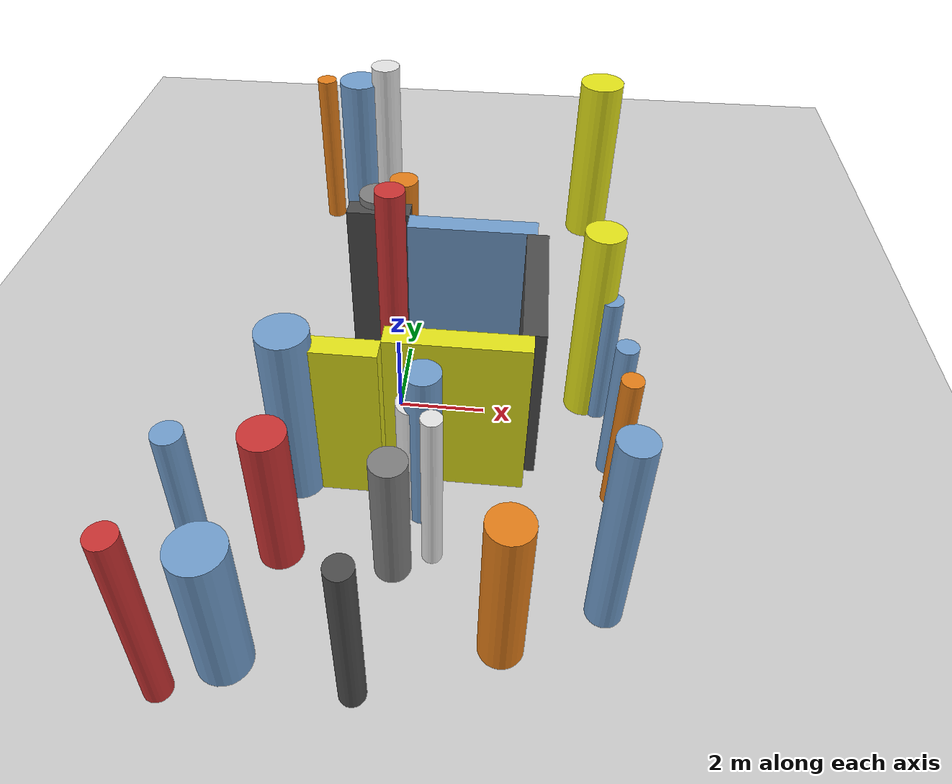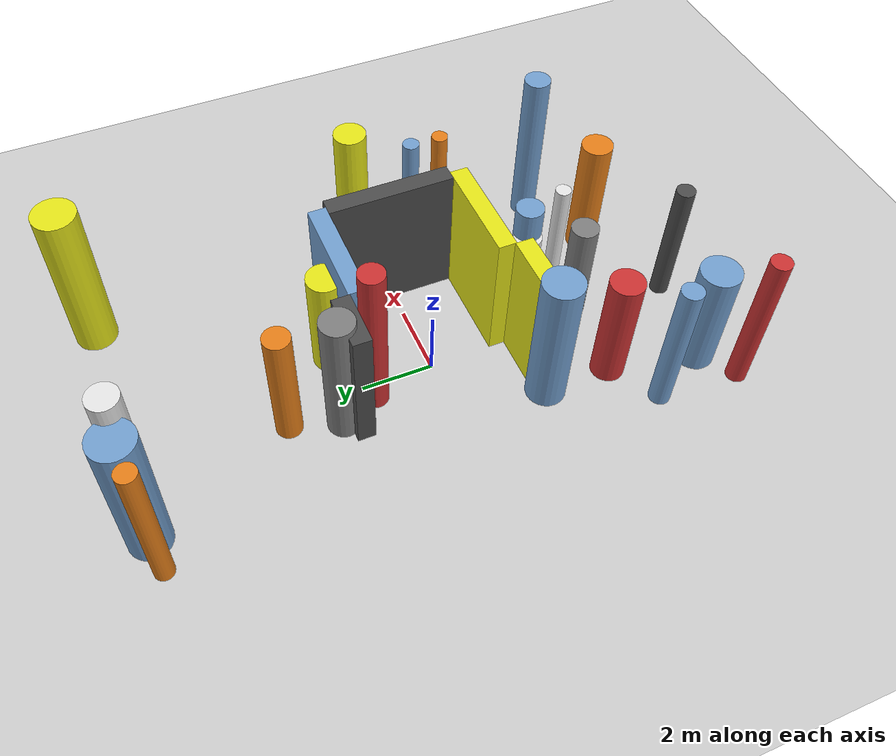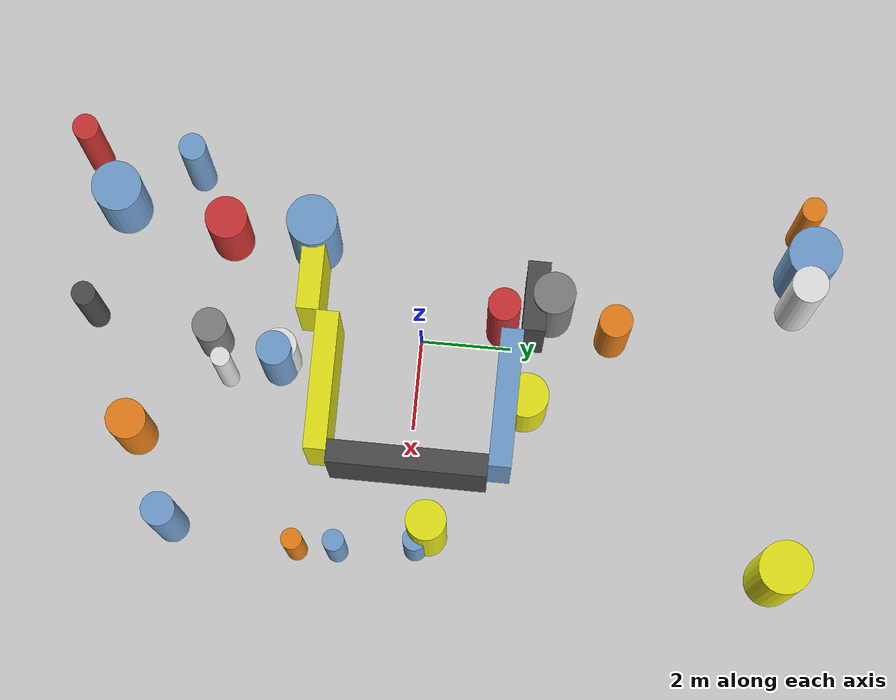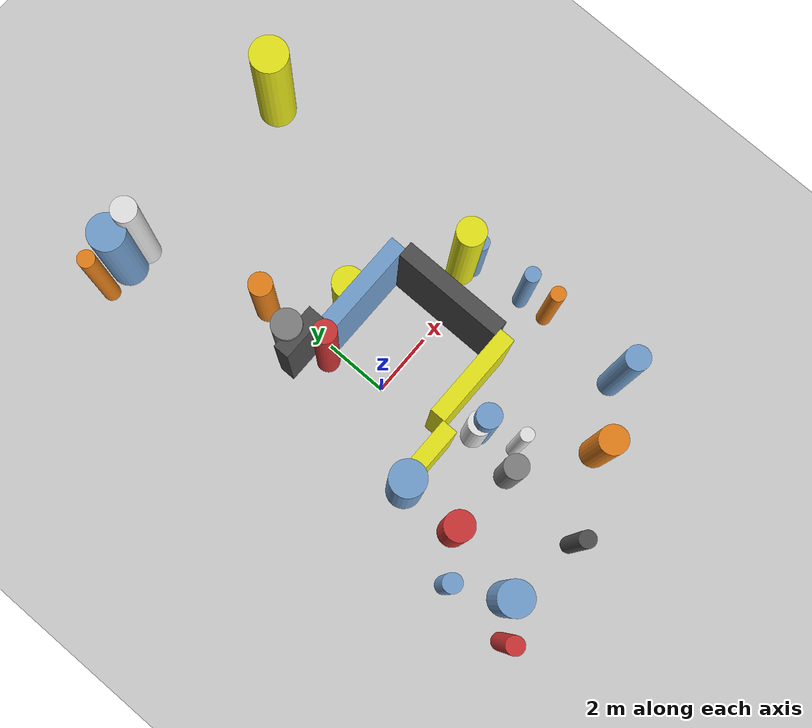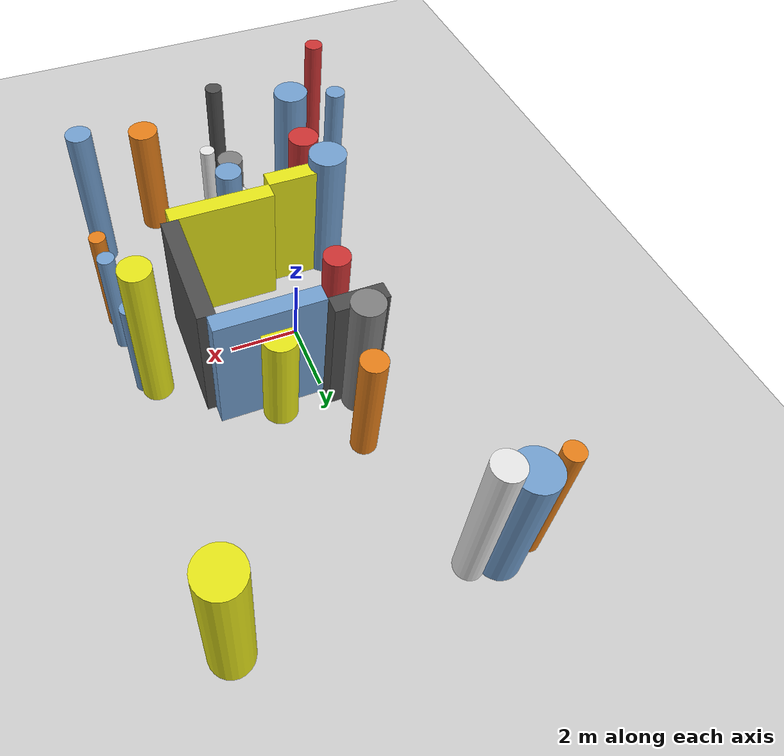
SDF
<?xml version='1.0'?>
<sdf version='1.6'>
  <world name='routeA_rl_v1__dense_recovery__rl_val__cul_de_sac_trap__000106'>
    <!-- Sun light -->
    <light name='sun' type='directional'>
      <cast_shadows>1</cast_shadows>
      <pose>0 0 10 0 0 0</pose>
      <diffuse>0.8 0.8 0.8 1</diffuse>
      <specular>0.2 0.2 0.2 1</specular>
      <attenuation>
        <range>1000</range>
        <constant>0.9</constant>
        <linear>0.01</linear>
        <quadratic>0.001</quadratic>
      </attenuation>
      <direction>-0.5 0.1 -0.9</direction>
    </light>

    <!-- Ground plane -->
    <model name='ground_plane'>
      <static>1</static>
      <link name='link'>
        <collision name='collision'>
          <geometry>
            <plane>
              <normal>0 0 1</normal>
              <size>100 100</size>
            </plane>
          </geometry>
          <surface>
            <contact>
              <collide_bitmask>65535</collide_bitmask>
              <ode/>
            </contact>
            <friction>
              <ode>
                <mu>100</mu>
                <mu2>50</mu2>
              </ode>
              <torsional><ode/></torsional>
            </friction>
            <bounce/>
          </surface>
          <max_contacts>10</max_contacts>
        </collision>
        <visual name='visual'>
          <cast_shadows>0</cast_shadows>
          <geometry>
            <plane>
              <normal>0 0 1</normal>
              <size>100 100</size>
            </plane>
          </geometry>
          <material>
            <script>
              <uri>file://media/materials/scripts/gazebo.material</uri>
              <n>Gazebo/Grey</n>
            </script>
          </material>
        </visual>
      </link>
    </model>

    <!-- Environment -->
    <magnetic_field>6e-06 2.3e-05 -4.2e-05</magnetic_field>
    <atmosphere type='adiabatic'/>
    <physics name='default_physics' default='0' type='ode'>
      <gravity>0 0 -9.8</gravity>
      <max_step_size>0.004</max_step_size>
      <real_time_factor>1</real_time_factor>
      <real_time_update_rate>250</real_time_update_rate>
    </physics>
    <scene>
      <ambient>0.4 0.4 0.4 1</ambient>
      <background>0.7 0.7 0.7 1</background>
      <shadows>1</shadows>
    </scene>
    <wind/>
    <spherical_coordinates>
      <surface_model>EARTH_WGS84</surface_model>
      <latitude_deg>0</latitude_deg>
      <longitude_deg>0</longitude_deg>
      <elevation>0</elevation>
      <heading_deg>0</heading_deg>
    </spherical_coordinates>

    <!-- ============ OBSTACLES (29) ============ -->
    <model name='trap_side_l'>
      <static>1</static>
      <link name='link'>
        <visual name='visual'>
          <geometry>
            <box>
              <size>3.0000 0.5000 4.0000</size>
            </box>
          </geometry>
          <material>
            <script>
              <n>Gazebo/Yellow</n>
              <uri>file://media/materials/scripts/gazebo.material</uri>
            </script>
            <ambient>0.9 0.9 0.1 1</ambient>
          </material>
        </visual>
        <collision name='collision'>
          <geometry>
            <box>
              <size>3.0000 0.5000 4.0000</size>
            </box>
          </geometry>
          <max_contacts>10</max_contacts>
          <surface>
            <contact><ode/></contact>
            <bounce/>
            <friction>
              <ode><mu>1</mu><mu2>1</mu2></ode>
              <torsional><ode/></torsional>
            </friction>
          </surface>
        </collision>
      </link>
      <pose>1.5000 -2.0000 2.0000 0 0 0.0000</pose>
    </model>

    <model name='trap_side_r'>
      <static>1</static>
      <link name='link'>
        <visual name='visual'>
          <geometry>
            <box>
              <size>3.0000 0.5000 4.0000</size>
            </box>
          </geometry>
          <material>
            <script>
              <n>Gazebo/Blue</n>
              <uri>file://media/materials/scripts/gazebo.material</uri>
            </script>
            <ambient>0.447 0.624 0.812 1</ambient>
          </material>
        </visual>
        <collision name='collision'>
          <geometry>
            <box>
              <size>3.0000 0.5000 4.0000</size>
            </box>
          </geometry>
          <max_contacts>10</max_contacts>
          <surface>
            <contact><ode/></contact>
            <bounce/>
            <friction>
              <ode><mu>1</mu><mu2>1</mu2></ode>
              <torsional><ode/></torsional>
            </friction>
          </surface>
        </collision>
      </link>
      <pose>1.5000 2.0000 2.0000 0 0 0.0000</pose>
    </model>

    <model name='trap_back'>
      <static>1</static>
      <link name='link'>
        <visual name='visual'>
          <geometry>
            <box>
              <size>0.5000 3.5000 4.0000</size>
            </box>
          </geometry>
          <material>
            <script>
              <n>Gazebo/DarkGrey</n>
              <uri>file://media/materials/scripts/gazebo.material</uri>
            </script>
            <ambient>0.3 0.3 0.3 1</ambient>
          </material>
        </visual>
        <collision name='collision'>
          <geometry>
            <box>
              <size>0.5000 3.5000 4.0000</size>
            </box>
          </geometry>
          <max_contacts>10</max_contacts>
          <surface>
            <contact><ode/></contact>
            <bounce/>
            <friction>
              <ode><mu>1</mu><mu2>1</mu2></ode>
              <torsional><ode/></torsional>
            </friction>
          </surface>
        </collision>
      </link>
      <pose>3.0000 0.0000 2.0000 0 0 0.0000</pose>
    </model>

    <model name='trap_funnel_l'>
      <static>1</static>
      <link name='link'>
        <visual name='visual'>
          <geometry>
            <box>
              <size>1.5000 0.5000 4.0000</size>
            </box>
          </geometry>
          <material>
            <script>
              <n>Gazebo/Yellow</n>
              <uri>file://media/materials/scripts/gazebo.material</uri>
            </script>
            <ambient>0.9 0.9 0.1 1</ambient>
          </material>
        </visual>
        <collision name='collision'>
          <geometry>
            <box>
              <size>1.5000 0.5000 4.0000</size>
            </box>
          </geometry>
          <max_contacts>10</max_contacts>
          <surface>
            <contact><ode/></contact>
            <bounce/>
            <friction>
              <ode><mu>1</mu><mu2>1</mu2></ode>
              <torsional><ode/></torsional>
            </friction>
          </surface>
        </collision>
      </link>
      <pose>-0.7500 -2.4500 2.0000 0 0 0.0000</pose>
    </model>

    <model name='trap_funnel_r'>
      <static>1</static>
      <link name='link'>
        <visual name='visual'>
          <geometry>
            <box>
              <size>1.5000 0.5000 4.0000</size>
            </box>
          </geometry>
          <material>
            <script>
              <n>Gazebo/DarkGrey</n>
              <uri>file://media/materials/scripts/gazebo.material</uri>
            </script>
            <ambient>0.3 0.3 0.3 1</ambient>
          </material>
        </visual>
        <collision name='collision'>
          <geometry>
            <box>
              <size>1.5000 0.5000 4.0000</size>
            </box>
          </geometry>
          <max_contacts>10</max_contacts>
          <surface>
            <contact><ode/></contact>
            <bounce/>
            <friction>
              <ode><mu>1</mu><mu2>1</mu2></ode>
              <torsional><ode/></torsional>
            </friction>
          </surface>
        </collision>
      </link>
      <pose>-0.7500 2.4500 2.0000 0 0 0.0000</pose>
    </model>

    <model name='trap_scatter_0'>
      <static>1</static>
      <link name='link'>
        <visual name='visual'>
          <geometry>
            <cylinder>
              <radius>0.4636</radius>
              <length>3.5366</length>
            </cylinder>
          </geometry>
          <material>
            <script>
              <n>Gazebo/Red</n>
              <uri>file://media/materials/scripts/gazebo.material</uri>
            </script>
            <ambient>0.8 0.2 0.2 1</ambient>
          </material>
        </visual>
        <collision name='collision'>
          <geometry>
            <cylinder>
              <radius>0.4636</radius>
              <length>3.5366</length>
            </cylinder>
          </geometry>
          <max_contacts>10</max_contacts>
          <surface>
            <contact><ode/></contact>
            <bounce/>
            <friction>
              <ode><mu>1</mu><mu2>1</mu2></ode>
              <torsional><ode/></torsional>
            </friction>
          </surface>
        </collision>
      </link>
      <pose>-1.8703 -4.4226 1.7683 0 0 0.0000</pose>
    </model>

    <model name='trap_scatter_1'>
      <static>1</static>
      <link name='link'>
        <visual name='visual'>
          <geometry>
            <cylinder>
              <radius>0.2122</radius>
              <length>4.0328</length>
            </cylinder>
          </geometry>
          <material>
            <script>
              <n>Gazebo/White</n>
              <uri>file://media/materials/scripts/gazebo.material</uri>
            </script>
            <ambient>0.9 0.9 0.9 1</ambient>
          </material>
        </visual>
        <collision name='collision'>
          <geometry>
            <cylinder>
              <radius>0.2122</radius>
              <length>4.0328</length>
            </cylinder>
          </geometry>
          <max_contacts>10</max_contacts>
          <surface>
            <contact><ode/></contact>
            <bounce/>
            <friction>
              <ode><mu>1</mu><mu2>1</mu2></ode>
              <torsional><ode/></torsional>
            </friction>
          </surface>
        </collision>
      </link>
      <pose>1.2150 -4.2034 2.0164 0 0 0.0000</pose>
    </model>

    <model name='trap_scatter_2'>
      <static>1</static>
      <link name='link'>
        <visual name='visual'>
          <geometry>
            <cylinder>
              <radius>0.2626</radius>
              <length>3.8557</length>
            </cylinder>
          </geometry>
          <material>
            <script>
              <n>Gazebo/DarkGrey</n>
              <uri>file://media/materials/scripts/gazebo.material</uri>
            </script>
            <ambient>0.3 0.3 0.3 1</ambient>
          </material>
        </visual>
        <collision name='collision'>
          <geometry>
            <cylinder>
              <radius>0.2626</radius>
              <length>3.8557</length>
            </cylinder>
          </geometry>
          <max_contacts>10</max_contacts>
          <surface>
            <contact><ode/></contact>
            <bounce/>
            <friction>
              <ode><mu>1</mu><mu2>1</mu2></ode>
              <torsional><ode/></torsional>
            </friction>
          </surface>
        </collision>
      </link>
      <pose>0.1156 -7.2906 1.9278 0 0 0.0000</pose>
    </model>

    <model name='trap_scatter_4'>
      <static>1</static>
      <link name='link'>
        <visual name='visual'>
          <geometry>
            <cylinder>
              <radius>0.4893</radius>
              <length>3.3027</length>
            </cylinder>
          </geometry>
          <material>
            <script>
              <n>Gazebo/Yellow</n>
              <uri>file://media/materials/scripts/gazebo.material</uri>
            </script>
            <ambient>0.9 0.9 0.1 1</ambient>
          </material>
        </visual>
        <collision name='collision'>
          <geometry>
            <cylinder>
              <radius>0.4893</radius>
              <length>3.3027</length>
            </cylinder>
          </geometry>
          <max_contacts>10</max_contacts>
          <surface>
            <contact><ode/></contact>
            <bounce/>
            <friction>
              <ode><mu>1</mu><mu2>1</mu2></ode>
              <torsional><ode/></torsional>
            </friction>
          </surface>
        </collision>
      </link>
      <pose>1.3336 2.4345 1.6514 0 0 0.0000</pose>
    </model>

    <model name='trap_scatter_5'>
      <static>1</static>
      <link name='link'>
        <visual name='visual'>
          <geometry>
            <cylinder>
              <radius>0.2942</radius>
              <length>4.2757</length>
            </cylinder>
          </geometry>
          <material>
            <script>
              <n>Gazebo/Blue</n>
              <uri>file://media/materials/scripts/gazebo.material</uri>
            </script>
            <ambient>0.447 0.624 0.812 1</ambient>
          </material>
        </visual>
        <collision name='collision'>
          <geometry>
            <cylinder>
              <radius>0.2942</radius>
              <length>4.2757</length>
            </cylinder>
          </geometry>
          <max_contacts>10</max_contacts>
          <surface>
            <contact><ode/></contact>
            <bounce/>
            <friction>
              <ode><mu>1</mu><mu2>1</mu2></ode>
              <torsional><ode/></torsional>
            </friction>
          </surface>
        </collision>
      </link>
      <pose>-3.2224 -5.2490 2.1379 0 0 0.0000</pose>
    </model>

    <model name='trap_scatter_6'>
      <static>1</static>
      <link name='link'>
        <visual name='visual'>
          <geometry>
            <cylinder>
              <radius>0.3956</radius>
              <length>4.9399</length>
            </cylinder>
          </geometry>
          <material>
            <script>
              <n>Gazebo/White</n>
              <uri>file://media/materials/scripts/gazebo.material</uri>
            </script>
            <ambient>0.9 0.9 0.9 1</ambient>
          </material>
        </visual>
        <collision name='collision'>
          <geometry>
            <cylinder>
              <radius>0.3956</radius>
              <length>4.9399</length>
            </cylinder>
          </geometry>
          <max_contacts>10</max_contacts>
          <surface>
            <contact><ode/></contact>
            <bounce/>
            <friction>
              <ode><mu>1</mu><mu2>1</mu2></ode>
              <torsional><ode/></torsional>
            </friction>
          </surface>
        </collision>
      </link>
      <pose>-1.4331 8.2228 2.4700 0 0 0.0000</pose>
    </model>

    <model name='trap_scatter_7'>
      <static>1</static>
      <link name='link'>
        <visual name='visual'>
          <geometry>
            <cylinder>
              <radius>0.4394</radius>
              <length>4.9982</length>
            </cylinder>
          </geometry>
          <material>
            <script>
              <n>Gazebo/Yellow</n>
              <uri>file://media/materials/scripts/gazebo.material</uri>
            </script>
            <ambient>0.9 0.9 0.1 1</ambient>
          </material>
        </visual>
        <collision name='collision'>
          <geometry>
            <cylinder>
              <radius>0.4394</radius>
              <length>4.9982</length>
            </cylinder>
          </geometry>
          <max_contacts>10</max_contacts>
          <surface>
            <contact><ode/></contact>
            <bounce/>
            <friction>
              <ode><mu>1</mu><mu2>1</mu2></ode>
              <torsional><ode/></torsional>
            </friction>
          </surface>
        </collision>
      </link>
      <pose>4.3640 0.5493 2.4991 0 0 0.0000</pose>
    </model>

    <model name='trap_scatter_8'>
      <static>1</static>
      <link name='link'>
        <visual name='visual'>
          <geometry>
            <cylinder>
              <radius>0.5489</radius>
              <length>3.3941</length>
            </cylinder>
          </geometry>
          <material>
            <script>
              <n>Gazebo/Blue</n>
              <uri>file://media/materials/scripts/gazebo.material</uri>
            </script>
            <ambient>0.447 0.624 0.812 1</ambient>
          </material>
        </visual>
        <collision name='collision'>
          <geometry>
            <cylinder>
              <radius>0.5489</radius>
              <length>3.3941</length>
            </cylinder>
          </geometry>
          <max_contacts>10</max_contacts>
          <surface>
            <contact><ode/></contact>
            <bounce/>
            <friction>
              <ode><mu>1</mu><mu2>1</mu2></ode>
              <torsional><ode/></torsional>
            </friction>
          </surface>
        </collision>
      </link>
      <pose>-2.3525 -6.8742 1.6970 0 0 0.0000</pose>
    </model>

    <model name='trap_scatter_9'>
      <static>1</static>
      <link name='link'>
        <visual name='visual'>
          <geometry>
            <cylinder>
              <radius>0.5833</radius>
              <length>4.7379</length>
            </cylinder>
          </geometry>
          <material>
            <script>
              <n>Gazebo/Yellow</n>
              <uri>file://media/materials/scripts/gazebo.material</uri>
            </script>
            <ambient>0.9 0.9 0.1 1</ambient>
          </material>
        </visual>
        <collision name='collision'>
          <geometry>
            <cylinder>
              <radius>0.5833</radius>
              <length>4.7379</length>
            </cylinder>
          </geometry>
          <max_contacts>10</max_contacts>
          <surface>
            <contact><ode/></contact>
            <bounce/>
            <friction>
              <ode><mu>1</mu><mu2>1</mu2></ode>
              <torsional><ode/></torsional>
            </friction>
          </surface>
        </collision>
      </link>
      <pose>4.6090 8.2356 2.3690 0 0 0.0000</pose>
    </model>

    <model name='trap_scatter_10'>
      <static>1</static>
      <link name='link'>
        <visual name='visual'>
          <geometry>
            <cylinder>
              <radius>0.5506</radius>
              <length>4.3475</length>
            </cylinder>
          </geometry>
          <material>
            <script>
              <n>Gazebo/Blue</n>
              <uri>file://media/materials/scripts/gazebo.material</uri>
            </script>
            <ambient>0.447 0.624 0.812 1</ambient>
          </material>
        </visual>
        <collision name='collision'>
          <geometry>
            <cylinder>
              <radius>0.5506</radius>
              <length>4.3475</length>
            </cylinder>
          </geometry>
          <max_contacts>10</max_contacts>
          <surface>
            <contact><ode/></contact>
            <bounce/>
            <friction>
              <ode><mu>1</mu><mu2>1</mu2></ode>
              <torsional><ode/></torsional>
            </friction>
          </surface>
        </collision>
      </link>
      <pose>-1.8771 -2.5231 2.1737 0 0 0.0000</pose>
    </model>

    <model name='trap_scatter_11'>
      <static>1</static>
      <link name='link'>
        <visual name='visual'>
          <geometry>
            <cylinder>
              <radius>0.2392</radius>
              <length>3.5911</length>
            </cylinder>
          </geometry>
          <material>
            <script>
              <n>Gazebo/Blue</n>
              <uri>file://media/materials/scripts/gazebo.material</uri>
            </script>
            <ambient>0.447 0.624 0.812 1</ambient>
          </material>
        </visual>
        <collision name='collision'>
          <geometry>
            <cylinder>
              <radius>0.2392</radius>
              <length>3.5911</length>
            </cylinder>
          </geometry>
          <max_contacts>10</max_contacts>
          <surface>
            <contact><ode/></contact>
            <bounce/>
            <friction>
              <ode><mu>1</mu><mu2>1</mu2></ode>
              <torsional><ode/></torsional>
            </friction>
          </surface>
        </collision>
      </link>
      <pose>4.8815 -1.4135 1.7956 0 0 0.0000</pose>
    </model>

    <model name='trap_scatter_12'>
      <static>1</static>
      <link name='link'>
        <visual name='visual'>
          <geometry>
            <cylinder>
              <radius>0.2330</radius>
              <length>3.5318</length>
            </cylinder>
          </geometry>
          <material>
            <script>
              <n>Gazebo/Orange</n>
              <uri>file://media/materials/scripts/gazebo.material</uri>
            </script>
            <ambient>0.9 0.5 0.1 1</ambient>
          </material>
        </visual>
        <collision name='collision'>
          <geometry>
            <cylinder>
              <radius>0.2330</radius>
              <length>3.5318</length>
            </cylinder>
          </geometry>
          <max_contacts>10</max_contacts>
          <surface>
            <contact><ode/></contact>
            <bounce/>
            <friction>
              <ode><mu>1</mu><mu2>1</mu2></ode>
              <torsional><ode/></torsional>
            </friction>
          </surface>
        </collision>
      </link>
      <pose>4.9346 -2.3147 1.7659 0 0 0.0000</pose>
    </model>

    <model name='trap_scatter_13'>
      <static>1</static>
      <link name='link'>
        <visual name='visual'>
          <geometry>
            <cylinder>
              <radius>0.3798</radius>
              <length>3.2017</length>
            </cylinder>
          </geometry>
          <material>
            <script>
              <n>Gazebo/Grey</n>
              <uri>file://media/materials/scripts/gazebo.material</uri>
            </script>
            <ambient>0.5 0.5 0.5 1</ambient>
          </material>
        </visual>
        <collision name='collision'>
          <geometry>
            <cylinder>
              <radius>0.3798</radius>
              <length>3.2017</length>
            </cylinder>
          </geometry>
          <max_contacts>10</max_contacts>
          <surface>
            <contact><ode/></contact>
            <bounce/>
            <friction>
              <ode><mu>1</mu><mu2>1</mu2></ode>
              <torsional><ode/></torsional>
            </friction>
          </surface>
        </collision>
      </link>
      <pose>0.4575 -4.5658 1.6008 0 0 0.0000</pose>
    </model>

    <model name='trap_scatter_14'>
      <static>1</static>
      <link name='link'>
        <visual name='visual'>
          <geometry>
            <cylinder>
              <radius>0.4614</radius>
              <length>4.1831</length>
            </cylinder>
          </geometry>
          <material>
            <script>
              <n>Gazebo/Grey</n>
              <uri>file://media/materials/scripts/gazebo.material</uri>
            </script>
            <ambient>0.5 0.5 0.5 1</ambient>
          </material>
        </visual>
        <collision name='collision'>
          <geometry>
            <cylinder>
              <radius>0.4614</radius>
              <length>4.1831</length>
            </cylinder>
          </geometry>
          <max_contacts>10</max_contacts>
          <surface>
            <contact><ode/></contact>
            <bounce/>
            <friction>
              <ode><mu>1</mu><mu2>1</mu2></ode>
              <torsional><ode/></torsional>
            </friction>
          </surface>
        </collision>
      </link>
      <pose>-0.8217 2.8249 2.0915 0 0 0.0000</pose>
    </model>

    <model name='trap_scatter_15'>
      <static>1</static>
      <link name='link'>
        <visual name='visual'>
          <geometry>
            <cylinder>
              <radius>0.3694</radius>
              <length>4.8648</length>
            </cylinder>
          </geometry>
          <material>
            <script>
              <n>Gazebo/Blue</n>
              <uri>file://media/materials/scripts/gazebo.material</uri>
            </script>
            <ambient>0.447 0.624 0.812 1</ambient>
          </material>
        </visual>
        <collision name='collision'>
          <geometry>
            <cylinder>
              <radius>0.3694</radius>
              <length>4.8648</length>
            </cylinder>
          </geometry>
          <max_contacts>10</max_contacts>
          <surface>
            <contact><ode/></contact>
            <bounce/>
            <friction>
              <ode><mu>1</mu><mu2>1</mu2></ode>
              <torsional><ode/></torsional>
            </friction>
          </surface>
        </collision>
      </link>
      <pose>4.6612 -5.1332 2.4324 0 0 0.0000</pose>
    </model>

    <model name='trap_scatter_16'>
      <static>1</static>
      <link name='link'>
        <visual name='visual'>
          <geometry>
            <cylinder>
              <radius>0.2817</radius>
              <length>4.4987</length>
            </cylinder>
          </geometry>
          <material>
            <script>
              <n>Gazebo/Red</n>
              <uri>file://media/materials/scripts/gazebo.material</uri>
            </script>
            <ambient>0.8 0.2 0.2 1</ambient>
          </material>
        </visual>
        <collision name='collision'>
          <geometry>
            <cylinder>
              <radius>0.2817</radius>
              <length>4.4987</length>
            </cylinder>
          </geometry>
          <max_contacts>10</max_contacts>
          <surface>
            <contact><ode/></contact>
            <bounce/>
            <friction>
              <ode><mu>1</mu><mu2>1</mu2></ode>
              <torsional><ode/></torsional>
            </friction>
          </surface>
        </collision>
      </link>
      <pose>-3.3941 -7.5605 2.2494 0 0 0.0000</pose>
    </model>

    <model name='trap_scatter_17'>
      <static>1</static>
      <link name='link'>
        <visual name='visual'>
          <geometry>
            <cylinder>
              <radius>0.3636</radius>
              <length>3.7543</length>
            </cylinder>
          </geometry>
          <material>
            <script>
              <n>Gazebo/Orange</n>
              <uri>file://media/materials/scripts/gazebo.material</uri>
            </script>
            <ambient>0.9 0.5 0.1 1</ambient>
          </material>
        </visual>
        <collision name='collision'>
          <geometry>
            <cylinder>
              <radius>0.3636</radius>
              <length>3.7543</length>
            </cylinder>
          </geometry>
          <max_contacts>10</max_contacts>
          <surface>
            <contact><ode/></contact>
            <bounce/>
            <friction>
              <ode><mu>1</mu><mu2>1</mu2></ode>
              <torsional><ode/></torsional>
            </friction>
          </surface>
        </collision>
      </link>
      <pose>-0.4025 4.2047 1.8772 0 0 0.0000</pose>
    </model>

    <model name='trap_scatter_18'>
      <static>1</static>
      <link name='link'>
        <visual name='visual'>
          <geometry>
            <cylinder>
              <radius>0.5742</radius>
              <length>4.4331</length>
            </cylinder>
          </geometry>
          <material>
            <script>
              <n>Gazebo/Blue</n>
              <uri>file://media/materials/scripts/gazebo.material</uri>
            </script>
            <ambient>0.447 0.624 0.812 1</ambient>
          </material>
        </visual>
        <collision name='collision'>
          <geometry>
            <cylinder>
              <radius>0.5742</radius>
              <length>4.4331</length>
            </cylinder>
          </geometry>
          <max_contacts>10</max_contacts>
          <surface>
            <contact><ode/></contact>
            <bounce/>
            <friction>
              <ode><mu>1</mu><mu2>1</mu2></ode>
              <torsional><ode/></torsional>
            </friction>
          </surface>
        </collision>
      </link>
      <pose>-2.1882 8.3069 2.2165 0 0 0.0000</pose>
    </model>

    <model name='trap_scatter_19'>
      <static>1</static>
      <link name='link'>
        <visual name='visual'>
          <geometry>
            <cylinder>
              <radius>0.2525</radius>
              <length>3.4010</length>
            </cylinder>
          </geometry>
          <material>
            <script>
              <n>Gazebo/Blue</n>
              <uri>file://media/materials/scripts/gazebo.material</uri>
            </script>
            <ambient>0.447 0.624 0.812 1</ambient>
          </material>
        </visual>
        <collision name='collision'>
          <geometry>
            <cylinder>
              <radius>0.2525</radius>
              <length>3.4010</length>
            </cylinder>
          </geometry>
          <max_contacts>10</max_contacts>
          <surface>
            <contact><ode/></contact>
            <bounce/>
            <friction>
              <ode><mu>1</mu><mu2>1</mu2></ode>
              <torsional><ode/></torsional>
            </friction>
          </surface>
        </collision>
      </link>
      <pose>4.6819 0.3083 1.7005 0 0 0.0000</pose>
    </model>

    <model name='trap_scatter_20'>
      <static>1</static>
      <link name='link'>
        <visual name='visual'>
          <geometry>
            <cylinder>
              <radius>0.3548</radius>
              <length>4.9505</length>
            </cylinder>
          </geometry>
          <material>
            <script>
              <n>Gazebo/Red</n>
              <uri>file://media/materials/scripts/gazebo.material</uri>
            </script>
            <ambient>0.8 0.2 0.2 1</ambient>
          </material>
        </visual>
        <collision name='collision'>
          <geometry>
            <cylinder>
              <radius>0.3548</radius>
              <length>4.9505</length>
            </cylinder>
          </geometry>
          <max_contacts>10</max_contacts>
          <surface>
            <contact><ode/></contact>
            <bounce/>
            <friction>
              <ode><mu>1</mu><mu2>1</mu2></ode>
              <torsional><ode/></torsional>
            </friction>
          </surface>
        </collision>
      </link>
      <pose>-0.3796 1.7744 2.4753 0 0 0.0000</pose>
    </model>

    <model name='trap_scatter_21'>
      <static>1</static>
      <link name='link'>
        <visual name='visual'>
          <geometry>
            <cylinder>
              <radius>0.2666</radius>
              <length>4.4649</length>
            </cylinder>
          </geometry>
          <material>
            <script>
              <n>Gazebo/Orange</n>
              <uri>file://media/materials/scripts/gazebo.material</uri>
            </script>
            <ambient>0.9 0.5 0.1 1</ambient>
          </material>
        </visual>
        <collision name='collision'>
          <geometry>
            <cylinder>
              <radius>0.2666</radius>
              <length>4.4649</length>
            </cylinder>
          </geometry>
          <max_contacts>10</max_contacts>
          <surface>
            <contact><ode/></contact>
            <bounce/>
            <friction>
              <ode><mu>1</mu><mu2>1</mu2></ode>
              <torsional><ode/></torsional>
            </friction>
          </surface>
        </collision>
      </link>
      <pose>-3.1162 8.1965 2.2324 0 0 0.0000</pose>
    </model>

    <model name='trap_scatter_22'>
      <static>1</static>
      <link name='link'>
        <visual name='visual'>
          <geometry>
            <cylinder>
              <radius>0.3762</radius>
              <length>4.0650</length>
            </cylinder>
          </geometry>
          <material>
            <script>
              <n>Gazebo/Blue</n>
              <uri>file://media/materials/scripts/gazebo.material</uri>
            </script>
            <ambient>0.447 0.624 0.812 1</ambient>
          </material>
        </visual>
        <collision name='collision'>
          <geometry>
            <cylinder>
              <radius>0.3762</radius>
              <length>4.0650</length>
            </cylinder>
          </geometry>
          <max_contacts>10</max_contacts>
          <surface>
            <contact><ode/></contact>
            <bounce/>
            <friction>
              <ode><mu>1</mu><mu2>1</mu2></ode>
              <torsional><ode/></torsional>
            </friction>
          </surface>
        </collision>
      </link>
      <pose>0.9227 -3.0832 2.0325 0 0 0.0000</pose>
    </model>

    <model name='trap_scatter_23'>
      <static>1</static>
      <link name='link'>
        <visual name='visual'>
          <geometry>
            <cylinder>
              <radius>0.3794</radius>
              <length>3.1960</length>
            </cylinder>
          </geometry>
          <material>
            <script>
              <n>Gazebo/White</n>
              <uri>file://media/materials/scripts/gazebo.material</uri>
            </script>
            <ambient>0.9 0.9 0.9 1</ambient>
          </material>
        </visual>
        <collision name='collision'>
          <geometry>
            <cylinder>
              <radius>0.3794</radius>
              <length>3.1960</length>
            </cylinder>
          </geometry>
          <max_contacts>10</max_contacts>
          <surface>
            <contact><ode/></contact>
            <bounce/>
            <friction>
              <ode><mu>1</mu><mu2>1</mu2></ode>
              <torsional><ode/></torsional>
            </friction>
          </surface>
        </collision>
      </link>
      <pose>0.7463 -3.0093 1.5980 0 0 0.0000</pose>
    </model>

    <model name='trap_scatter_24'>
      <static>1</static>
      <link name='link'>
        <visual name='visual'>
          <geometry>
            <cylinder>
              <radius>0.4427</radius>
              <length>3.7424</length>
            </cylinder>
          </geometry>
          <material>
            <script>
              <n>Gazebo/Orange</n>
              <uri>file://media/materials/scripts/gazebo.material</uri>
            </script>
            <ambient>0.9 0.5 0.1 1</ambient>
          </material>
        </visual>
        <collision name='collision'>
          <geometry>
            <cylinder>
              <radius>0.4427</radius>
              <length>3.7424</length>
            </cylinder>
          </geometry>
          <max_contacts>10</max_contacts>
          <surface>
            <contact><ode/></contact>
            <bounce/>
            <friction>
              <ode><mu>1</mu><mu2>1</mu2></ode>
              <torsional><ode/></torsional>
            </friction>
          </surface>
        </collision>
      </link>
      <pose>2.7146 -6.1116 1.8712 0 0 0.0000</pose>
    </model>

    <!-- GUI camera -->
    <gui fullscreen='0'>
      <camera name='user_camera'>
        <pose>-15 0 18 0 0.85 0.15</pose>
        <view_controller>orbit</view_controller>
        <projection_type>perspective</projection_type>
      </camera>
    </gui>
  </world>
</sdf>
